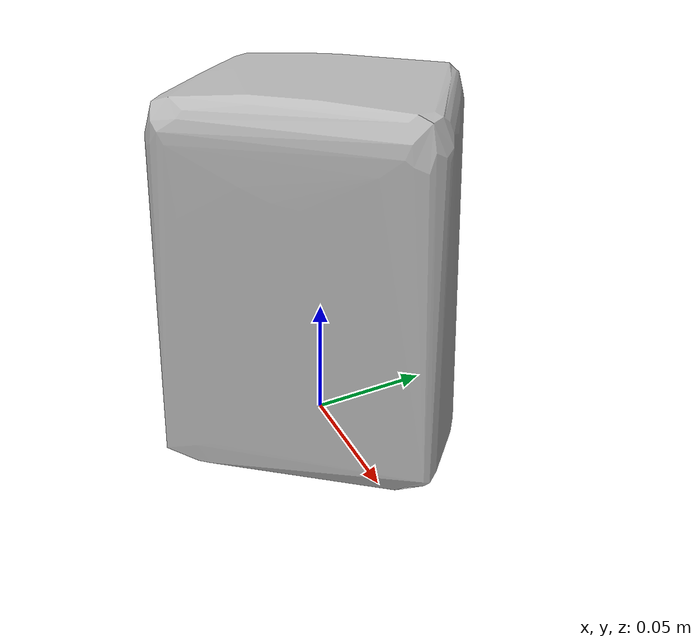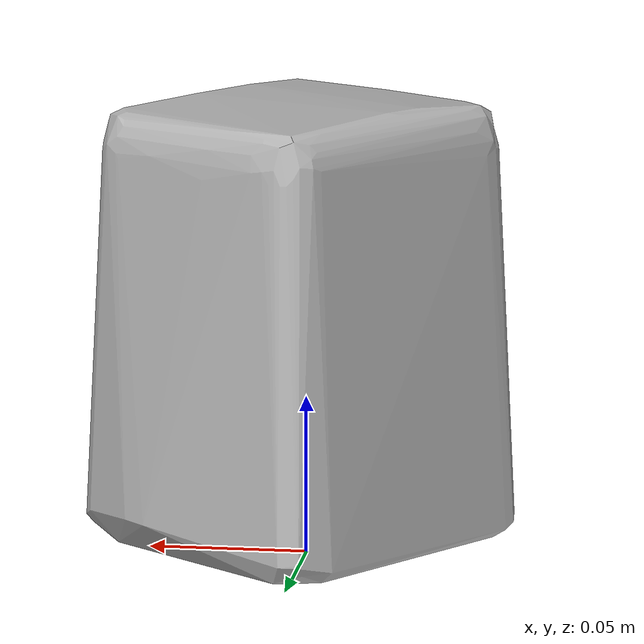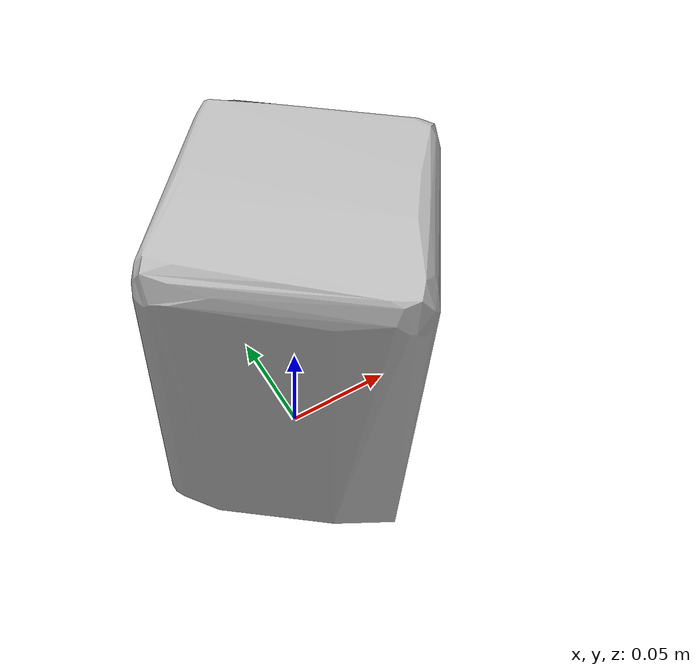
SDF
<?xml version='1.0'?>
<sdf version="1.4">
  <model name="pop_tarts_strawberry">
    <static>false</static>
    <link name="link">
      <inertial>
        <pose>0.0014636937975380897 -0.0009350394590706944 0.07164649033666963 3.1375381984384765 -0.02076653675849648 2.48873788748345</pose>
        <mass>0.12908710259473063</mass>
        <inertia>
          <ixx>0.00030703012595844703</ixx>
          <ixy>-2.894570492170222e-20</ixy>
          <ixz>5.24597484565301e-21</ixz>
          <iyy>0.00028785578045759975</iyy>
          <iyz>1.492313611717968e-20</iyz>
          <izz>0.00020209984509503504</izz>
        </inertia>
      </inertial>
      <collision name="collision">
        <geometry>
          <mesh>
            <!-- Use a downsampled mesh for collisions -->
            <uri>model:///pop_tarts_strawberry/pop_tarts_strawberry_250_collision.obj</uri>
	        </mesh>
        </geometry>
        <surface>
      </surface>
      </collision>
      <visual name="visual">
        <geometry>
          <mesh>
            <uri>model:///pop_tarts_strawberry/optimized_tsdf_texture_mapped_mesh.obj</uri>
	        </mesh>
        </geometry>
        <material>
          <script>
            <uri>model:///pop_tarts_strawberry/pop_tarts_strawberry.material</uri>
            <name>pop_tarts_strawberry</name>
          </script>
        </material>
      </visual>
    </link>
  </model>
</sdf>
